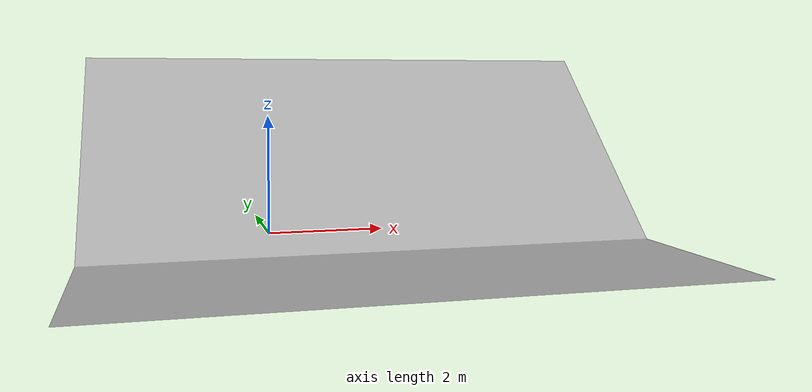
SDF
<?xml version="1.0" ?>
<sdf version="1.4">
    <model name="test">
      <static>true</static>
      <pose>-3 -5 0 0 0 0</pose>
      <link name="link">
        <collision name="collision">
          <geometry>
            <mesh>
              <uri>model://test/meshes/test_stl.stl</uri>
              <scale>3 3 3</scale>
            </mesh>
          </geometry>
          <surface>
            <friction>
              <ode>
                <mu>0.001</mu>
                <mu2>0.01</mu2>
              </ode>
            </friction>
          </surface>
        </collision>
          <visual name="visual">
            <geometry>
              <mesh>
                <uri>model://test/meshes/test_stl.stl</uri>
                <scale>3 3 3</scale>
              </mesh>
            </geometry>
            <material>
            	<script>
          	    <uri>model://materials/scripts</uri>
          	    <uri>model://materials/textures</uri>
          	    <name>grass/floor</name>
              </script>
            </material>
          </visual>
      </link>
    </model>
</sdf>
